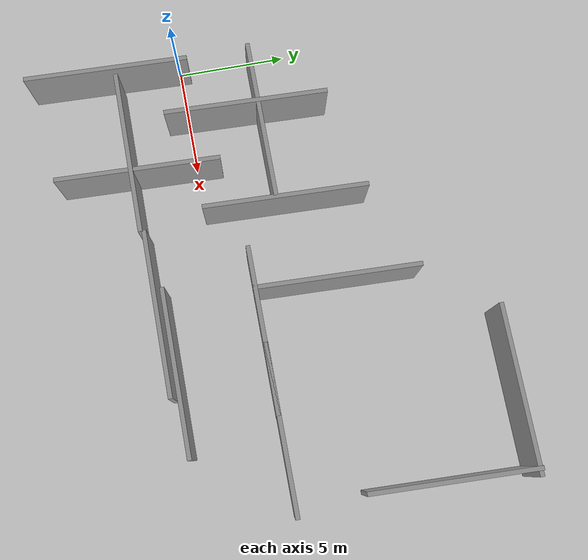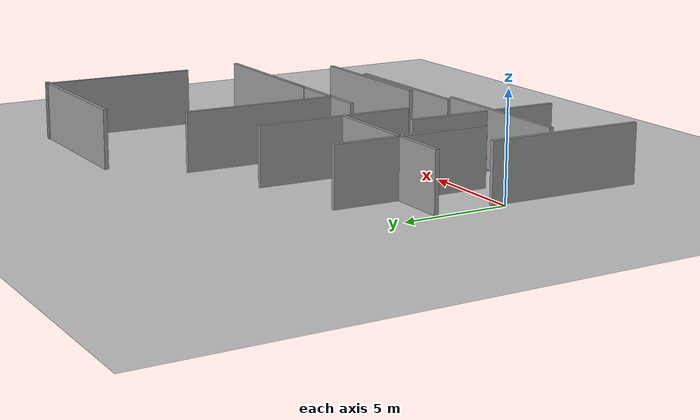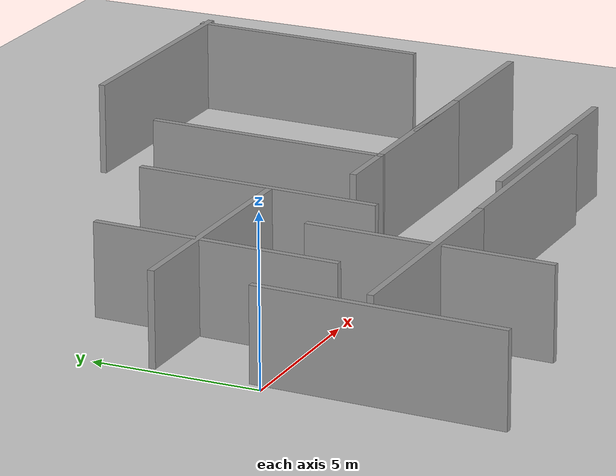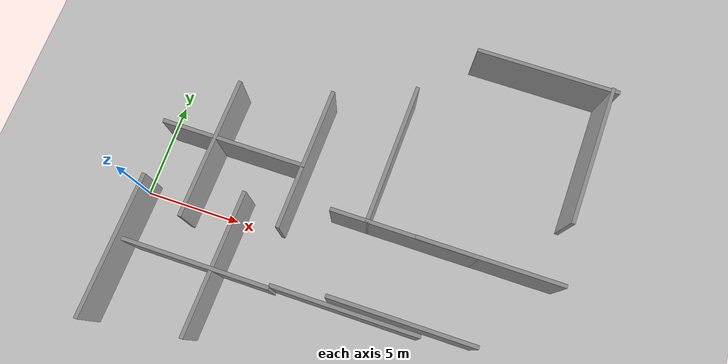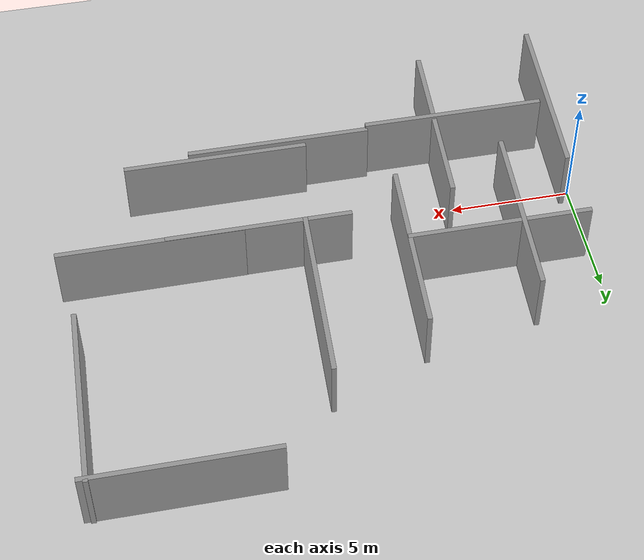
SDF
<sdf version="1.6">
 <world name="default">
  <light name="sun" type="directional">
   <pose>0 0 10 0 -0 0</pose>
   <diffuse>0.8 0.8 0.8 1</diffuse>
   <specular>0.2 0.2 0.2 1</specular>
   <attenuation>
    <range>1000</range>
    <constant>0.9</constant>
    <linear>0.01</linear>
    <quadratic>0.001</quadratic>
   </attenuation>
   <direction>-0.5 0.1 -0.9</direction>
  </light>
  <model name="ground_plane">
   <static>1</static>
   <link name="link">
    <collision name="collision">
     <geometry><plane><normal>0 0 1</normal><size>100 100</size></plane></geometry>
     <surface><friction><ode><mu>100</mu><mu2>50</mu2></ode></friction></surface>
    </collision>
    <visual name="visual">
     <cast_shadows>0</cast_shadows>
     <geometry><plane><normal>0 0 1</normal><size>100 100</size></plane></geometry>
     <material>
      <script><uri>file://media/materials/scripts/gazebo.material</uri><name>Gazebo/Grey</name></script>
     </material>
    </visual>
    <velocity_decay><linear>0</linear><angular>0</angular></velocity_decay>
   </link>
  </model>
  <physics name="default_physics" default="0" type="ode">
   <max_step_size>0.001</max_step_size>
   <real_time_factor>1</real_time_factor>
   <real_time_update_rate>1000</real_time_update_rate>
  </physics>
  <scene><ambient>0.4 0.4 0.4 1</ambient><background>0.7 0.7 0.7 1</background><shadows>1</shadows></scene>
  <model name="grey_wall">
   <static>1</static>
   <link name="link">
    <pose>0 0 1.4 0 -0 0</pose>
    <collision name="collision"><geometry><box><size>7.5 0.2 2.8</size></box></geometry></collision>
    <visual name="visual">
     <cast_shadows>0</cast_shadows>
     <geometry><box><size>7.5 0.2 2.8</size></box></geometry>
     <material>
      <script>
       <uri>model://grey_wall/materials/scripts</uri>
       <uri>model://grey_wall/materials/textures</uri>
       <name>vrc/grey_wall</name>
      </script>
     </material>
    </visual>
    <velocity_decay><linear>0</linear><angular>0</angular></velocity_decay>
   </link>
   <pose>11.6638 5.32701 0 0 -0 1.53488</pose>
  </model>
  <gravity>0 0 -9.8</gravity>
  <magnetic_field>6e-06 2.3e-05 -4.2e-05</magnetic_field>
  <atmosphere type="adiabatic"/>
  <spherical_coordinates>
   <surface_model>EARTH_WGS84</surface_model>
   <latitude_deg>0</latitude_deg>
   <longitude_deg>0</longitude_deg>
   <elevation>0</elevation>
   <heading_deg>0</heading_deg>
  </spherical_coordinates>
  <model name="grey_wall_clone">
   <static>1</static>
   <link name="link">
    <pose>0 0 1.4 0 -0 0</pose>
    <collision name="collision"><geometry><box><size>7.5 0.2 2.8</size></box></geometry></collision>
    <visual name="visual">
     <cast_shadows>0</cast_shadows>
     <geometry><box><size>7.5 0.2 2.8</size></box></geometry>
     <material>
      <script>
       <uri>model://grey_wall/materials/scripts</uri>
       <uri>model://grey_wall/materials/textures</uri>
       <name>vrc/grey_wall</name>
      </script>
     </material>
    </visual>
    <velocity_decay><linear>0</linear><angular>0</angular></velocity_decay>
   </link>
   <pose>3.98037 3.31874 0 0 -0 0</pose>
  </model>
  <model name="grey_wall_clone_0">
   <static>1</static>
   <link name="link">
    <pose>0 0 1.4 0 -0 0</pose>
    <collision name="collision"><geometry><box><size>7.5 0.2 2.8</size></box></geometry></collision>
    <visual name="visual">
     <cast_shadows>0</cast_shadows>
     <geometry><box><size>7.5 0.2 2.8</size></box></geometry>
     <material>
      <script>
       <uri>model://grey_wall/materials/scripts</uri>
       <uri>model://grey_wall/materials/textures</uri>
       <name>vrc/grey_wall</name>
      </script>
     </material>
    </visual>
    <velocity_decay><linear>0</linear><angular>0</angular></velocity_decay>
   </link>
   <pose>13.394 1.67888 0 0 -0 0</pose>
  </model>
  <model name="grey_wall_clone_1">
   <static>1</static>
   <link name="link">
    <pose>0 0 1.4 0 -0 0</pose>
    <collision name="collision"><geometry><box><size>7.5 0.2 2.8</size></box></geometry></collision>
    <visual name="visual">
     <cast_shadows>0</cast_shadows>
     <geometry><box><size>7.5 0.2 2.8</size></box></geometry>
     <material>
      <script>
       <uri>model://grey_wall/materials/scripts</uri>
       <uri>model://grey_wall/materials/textures</uri>
       <name>vrc/grey_wall</name>
      </script>
     </material>
    </visual>
    <velocity_decay><linear>0</linear><angular>0</angular></velocity_decay>
   </link>
   <pose>4.44008 -2.85629 0.105455 0 -0 0</pose>
  </model>
  <model name="grey_wall_clone_2">
   <static>1</static>
   <link name="link">
    <pose>0 0 1.4 0 -0 0</pose>
    <collision name="collision"><geometry><box><size>7.5 0.2 2.8</size></box></geometry></collision>
    <visual name="visual">
     <cast_shadows>0</cast_shadows>
     <geometry><box><size>7.5 0.2 2.8</size></box></geometry>
     <material>
      <script>
       <uri>model://grey_wall/materials/scripts</uri>
       <uri>model://grey_wall/materials/textures</uri>
       <name>vrc/grey_wall</name>
      </script>
     </material>
    </visual>
    <velocity_decay><linear>0</linear><angular>0</angular></velocity_decay>
   </link>
   <pose>11.8743 -2.71049 0 0 -0 0</pose>
  </model>
  <model name="grey_wall_clone_3">
   <static>1</static>
   <link name="link">
    <pose>0 0 1.4 0 -0 0</pose>
    <collision name="collision"><geometry><box><size>7.5 0.2 2.8</size></box></geometry></collision>
    <visual name="visual">
     <cast_shadows>0</cast_shadows>
     <geometry><box><size>7.5 0.2 2.8</size></box></geometry>
     <material>
      <script>
       <uri>model://grey_wall/materials/scripts</uri>
       <uri>model://grey_wall/materials/textures</uri>
       <name>vrc/grey_wall</name>
      </script>
     </material>
    </visual>
    <velocity_decay><linear>0</linear><angular>0</angular></velocity_decay>
   </link>
   <pose>14.5537 -2.3253 0 0 -0 0</pose>
  </model>
  <model name="grey_wall_clone_4">
   <static>1</static>
   <link name="link">
    <pose>0 0 1.4 0 -0 0</pose>
    <collision name="collision"><geometry><box><size>7.5 0.2 2.8</size></box></geometry></collision>
    <visual name="visual">
     <cast_shadows>0</cast_shadows>
     <geometry><box><size>7.5 0.2 2.8</size></box></geometry>
     <material>
      <script>
       <uri>model://grey_wall/materials/scripts</uri>
       <uri>model://grey_wall/materials/textures</uri>
       <name>vrc/grey_wall</name>
      </script>
     </material>
    </visual>
    <velocity_decay><linear>0</linear><angular>0</angular></velocity_decay>
   </link>
   <pose>21.1177 8.4515 0 0 -0 1.53488</pose>
  </model>
  <model name="grey_wall_clone_0_clone">
   <static>1</static>
   <link name="link">
    <pose>0 0 1.4 0 -0 0</pose>
    <collision name="collision"><geometry><box><size>7.5 0.2 2.8</size></box></geometry></collision>
    <visual name="visual">
     <cast_shadows>0</cast_shadows>
     <geometry><box><size>7.5 0.2 2.8</size></box></geometry>
     <material>
      <script>
       <uri>model://grey_wall/materials/scripts</uri>
       <uri>model://grey_wall/materials/textures</uri>
       <name>vrc/grey_wall</name>
      </script>
     </material>
    </visual>
    <velocity_decay><linear>0</linear><angular>0</angular></velocity_decay>
   </link>
   <pose>17.8546 12.0396 0 0 -0 0</pose>
  </model>
  <model name="grey_wall_clone_5">
   <static>1</static>
   <link name="link">
    <pose>0 0 1.4 0 -0 0</pose>
    <collision name="collision"><geometry><box><size>7.5 0.2 2.8</size></box></geometry></collision>
    <visual name="visual">
     <cast_shadows>0</cast_shadows>
     <geometry><box><size>7.5 0.2 2.8</size></box></geometry>
     <material>
      <script>
       <uri>model://grey_wall/materials/scripts</uri>
       <uri>model://grey_wall/materials/textures</uri>
       <name>vrc/grey_wall</name>
      </script>
     </material>
    </visual>
    <velocity_decay><linear>0</linear><angular>0</angular></velocity_decay>
   </link>
   <pose>2.99661 2.76097 0 0 -0 1.53488</pose>
  </model>
  <model name="grey_wall_clone_6">
   <static>1</static>
   <link name="link">
    <pose>0 0 1.4 0 -0 0</pose>
    <collision name="collision"><geometry><box><size>7.5 0.2 2.8</size></box></geometry></collision>
    <visual name="visual">
     <cast_shadows>0</cast_shadows>
     <geometry><box><size>7.5 0.2 2.8</size></box></geometry>
     <material>
      <script>
       <uri>model://grey_wall/materials/scripts</uri>
       <uri>model://grey_wall/materials/textures</uri>
       <name>vrc/grey_wall</name>
      </script>
     </material>
    </visual>
    <velocity_decay><linear>0</linear><angular>0</angular></velocity_decay>
   </link>
   <pose>5.2747 -2.56925 0 0 -0 1.53488</pose>
  </model>
  <model name="grey_wall_clone_7">
   <static>1</static>
   <link name="link">
    <pose>0 0 1.4 0 -0 0</pose>
    <collision name="collision"><geometry><box><size>7.5 0.2 2.8</size></box></geometry></collision>
    <visual name="visual">
     <cast_shadows>0</cast_shadows>
     <geometry><box><size>7.5 0.2 2.8</size></box></geometry>
     <material>
      <script>
       <uri>model://grey_wall/materials/scripts</uri>
       <uri>model://grey_wall/materials/textures</uri>
       <name>vrc/grey_wall</name>
      </script>
     </material>
    </visual>
    <velocity_decay><linear>0</linear><angular>0</angular></velocity_decay>
   </link>
   <pose>7.66884 3.74269 0 0 -0 1.53488</pose>
  </model>
  <model name="grey_wall_clone_6_clone">
   <static>1</static>
   <link name="link">
    <pose>0 0 1.4 0 -0 0</pose>
    <collision name="collision"><geometry><box><size>7.5 0.2 2.8</size></box></geometry></collision>
    <visual name="visual">
     <cast_shadows>0</cast_shadows>
     <geometry><box><size>7.5 0.2 2.8</size></box></geometry>
     <material>
      <script>
       <uri>model://grey_wall/materials/scripts</uri>
       <uri>model://grey_wall/materials/textures</uri>
       <name>vrc/grey_wall</name>
      </script>
     </material>
    </visual>
    <velocity_decay><linear>0</linear><angular>0</angular></velocity_decay>
   </link>
   <pose>0.275285 -3.28193 0 0 -0 1.53488</pose>
  </model>
  <model name="grey_wall_clone_0_clone_0">
   <static>1</static>
   <link name="link">
    <pose>0 0 1.4 0 -0 0</pose>
    <collision name="collision"><geometry><box><size>7.5 0.2 2.8</size></box></geometry></collision>
    <visual name="visual">
     <cast_shadows>0</cast_shadows>
     <geometry><box><size>7.5 0.2 2.8</size></box></geometry>
     <material>
      <script>
       <uri>model://grey_wall/materials/scripts</uri>
       <uri>model://grey_wall/materials/textures</uri>
       <name>vrc/grey_wall</name>
      </script>
     </material>
    </visual>
    <velocity_decay><linear>0</linear><angular>0</angular></velocity_decay>
   </link>
   <pose>17.7217 1.69155 0 0 -0 0</pose>
  </model>
 </world>
</sdf>
